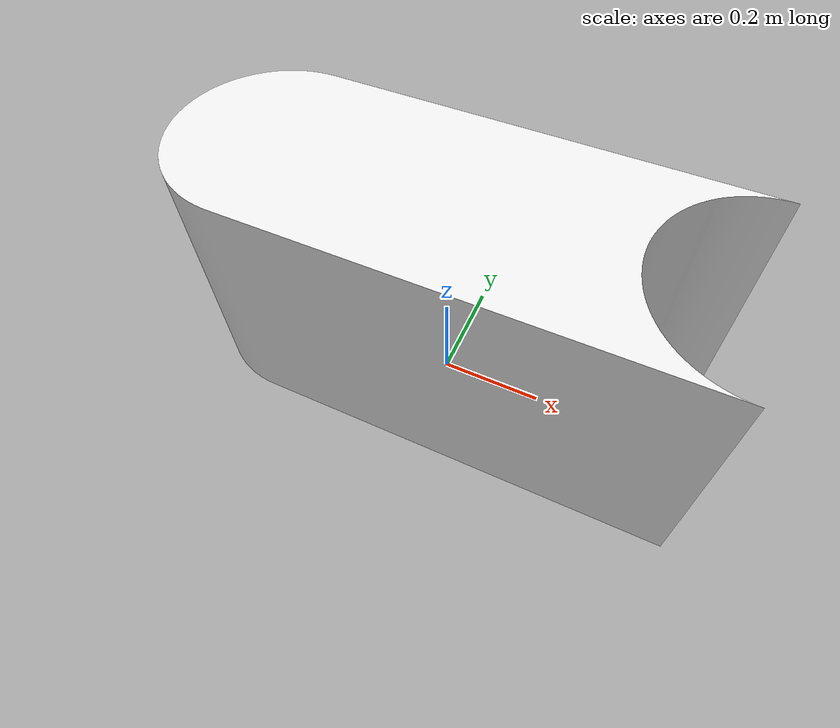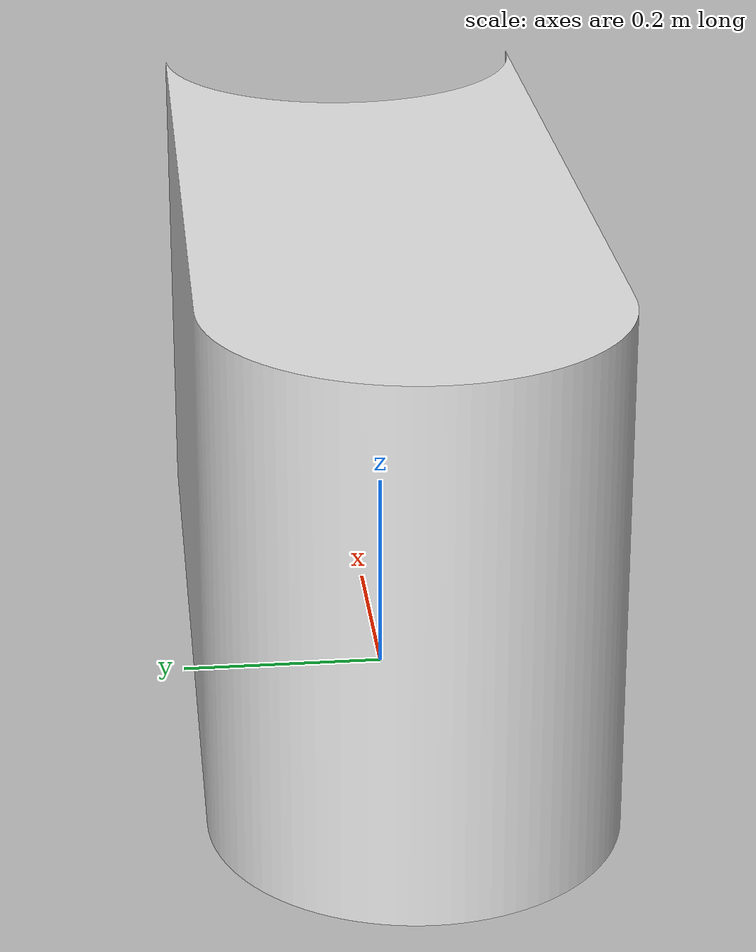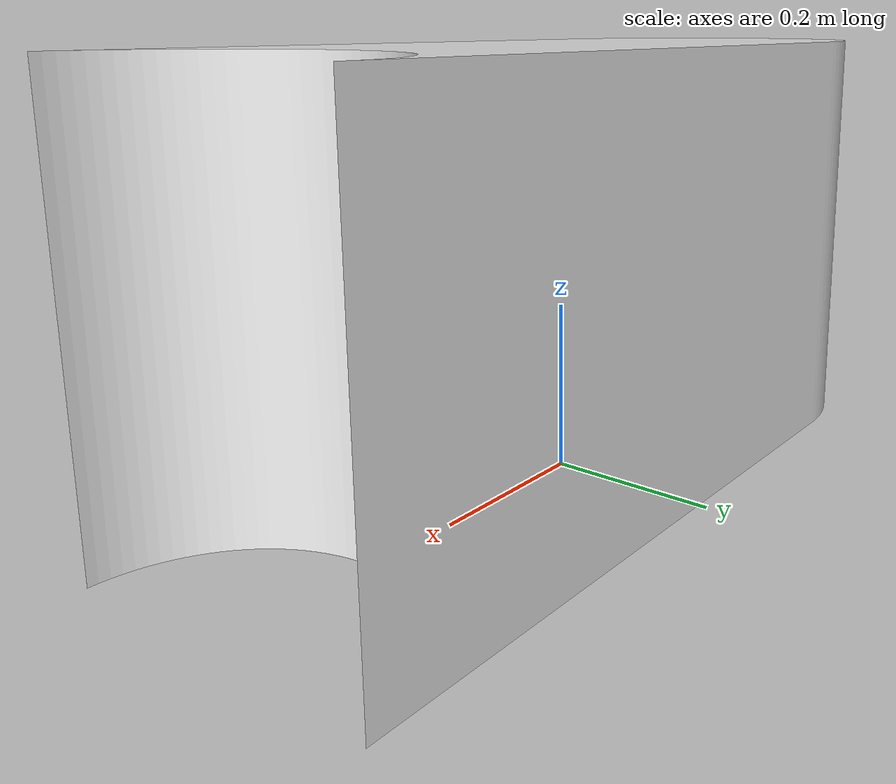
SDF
<?xml version='1.0'?>
<sdf version="1.5">
  <model name="Tecpro Karting Barrier (gray)">
    <pose>0 0 0 0 0 0</pose>
    <static>true</static>
    <link name="link">
      <collision name="collision">
        <pose>-0.095 0 0.25 0 0 0</pose>
        <geometry>
          <box>
            <size>0.81 0.38 0.5</size>
          </box>
        </geometry>
      </collision>
      <visual name="visual">
        <pose>-0.31 -0.19 0 0 0 0</pose>
        <geometry>
          <mesh>
            <uri>model://gray_barrier/meshes/barrier.stl</uri>
          </mesh>
        </geometry>
        <material>
          <ambient>0.9 0.9 0.9 1</ambient>
          <diffuse>0.9 0.9 0.9 1</diffuse>
          <specular>0.9 0.9 0.9 1</specular>
          <emissive>0 0 0 0</emissive>
        </material>
      </visual>
    </link>
  </model>
</sdf>
